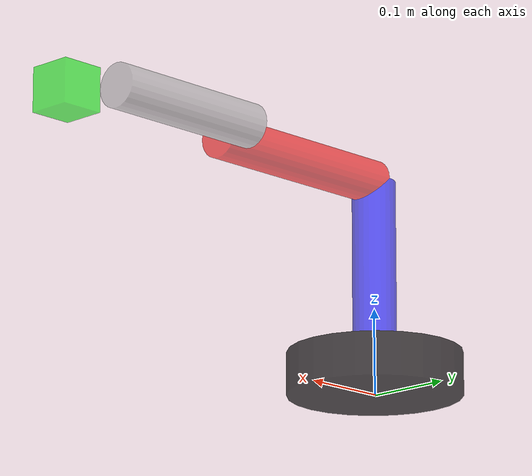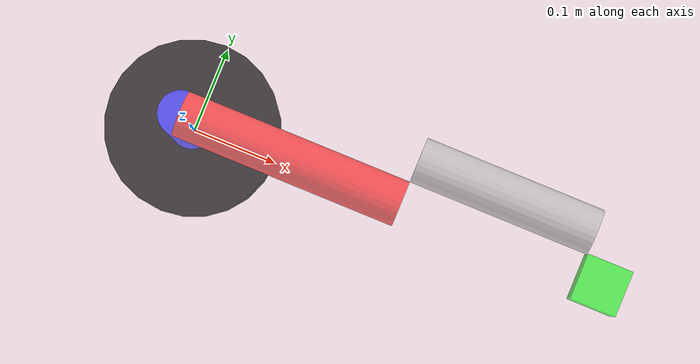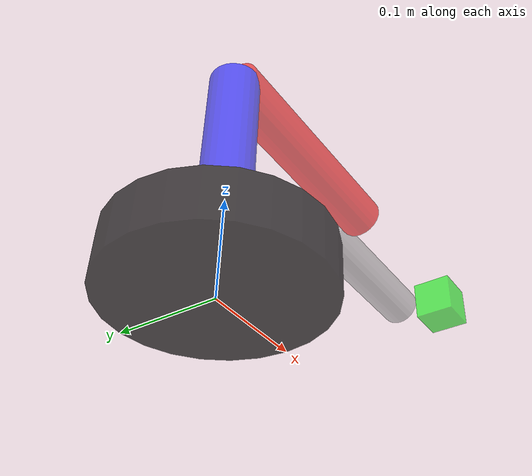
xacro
<?xml version="1.0"?>
<robot name="arm_4dof" xmlns:xacro="http://www.ros.org/wiki/xacro">

	<!-- Parametros DH -->
	<!--Joint   a       d      alpha   theta -->
	<!--J1      0       0.05   0       theta1 -->
	<!--J2      0.05    0.20   pi/2    theta2 -->
	<!--J3      0.25   -0.05   0       theta3 -->
	<!--J4      0.20    0.05   0       theta4 -->
	<!--Tip     0.05    0     -pi/2    0 -->

       <!-- referencia world -->

	<link name="world"/>

	<joint name="j0" type="fixed">
		<parent link="world"/>
		<child link="base_link"/>
	</joint>

	<link name="base_link">

		<visual>
			<geometry>
				<cylinder length="0.05" radius="0.1"/>
			</geometry>
			<material name="black">
				<color rgba="0.0 0.0 0.0 0.7"/>
			</material>
			<origin rpy="0 0 0" xyz="0 0 0.025"/>
		</visual>

		<collision>
			<geometry>
				<cylinder length="0.05" radius="0.1"/>
			</geometry>
			<origin rpy="0 0 0" xyz="0 0 0.025"/>
		</collision>

		<inertial>
			<mass value="1.0"/>
			<origin rpy="0 0 0" xyz="0 0 0.025"/>
			<inertia ixx="0.0027" iyy="0.0027" izz="0.005" ixy="0" ixz="0" iyz="0"/>
		</inertial>
	</link>

	<!--J1      0       0.05   0       theta1 -->
	<joint name="j1" type="revolute">
		<axis xyz="0 0 1"/>
		<parent link="base_link"/>
		<child link="torso"/>
		<origin rpy="0 0 0" xyz="0 0 0.05"/>
		<limit velocity="1.0" effort="2.0" upper="1.5708" lower="-1.5708"/>
	</joint>

	<link name="torso">

		<visual>
			<geometry>
				<cylinder length="0.2" radius="0.025"/>
			</geometry>
			<material name="blue">
				<color rgba="0.0 0.0 1.0 0.6"/>
			</material>
			<origin rpy="0 0 0" xyz="0.0 0.0 0.1"/>
		</visual>
		<collision>
			<geometry>
				<cylinder length="0.2" radius="0.025"/>
			</geometry>
			<origin rpy="0 0 0" xyz="0.0 0.0 0.1"/>
		</collision>

		<inertial>
			<mass value="1.0"/>
			<origin rpy="0 0 0" xyz="0 0 0.1"/>
			<inertia ixx="0.02146" iyy="0.02146" izz="0.00125" ixy="0" ixz="0" iyz="0"/>
		</inertial>
	</link>

       <!--J2      0    0.20   pi/2    theta2 -->
	<joint name="j2" type="revolute">
		<axis xyz="0 0 1"/>
		<parent link="torso"/>
		<child link="upper_arm"/>
		<origin rpy="1.5708 0 0" xyz="0.0 0 0.20"/>
		<limit velocity="1.0" effort="2.0" upper="1.5708" lower="-0.7853"/>
	</joint>

	<link name="upper_arm">

		<visual>
			<geometry>
				<cylinder length="0.25" radius="0.025"/>
			</geometry>
			<material name="red">
				<color rgba="1.0 0.0 0.0 0.6"/>
			</material>
			<origin rpy="0 1.5708 0" xyz="0.125 0 0.0"/>
		</visual>
		<collision>
			<geometry>
				<cylinder length="0.25" radius="0.025"/>
			</geometry>
			<origin rpy="0 1.5708 0" xyz="0.125 0 0.0"/>
		</collision>

		<inertial>
			<mass value="1.0"/>
			<origin rpy="0 1.5708 0" xyz="0.125 0 0.0"/>
			<inertia ixx="0.01396" iyy="0.01396" izz="0.00125" ixy="0" ixz="0" iyz="0"/>
		</inertial>
	</link>

	<!--J3      0.25   -0.05   0       theta3 -->
	<joint name="j3" type="revolute">
		<axis xyz="0 0 1"/>

		<parent link="upper_arm"/>
		<child link="lower_arm"/>
		<origin rpy="0 0 0" xyz="0.25 0.0 -0.05"/>
		<limit velocity="1.0" effort="30.0" upper="0.7853" lower="-0.7853"/>
	</joint>

	<link name="lower_arm">
		<inertial>
			<mass value="1.0"/>
			<origin rpy="0 1.5708 0" xyz="0.1 0 0"/>
			<inertia ixx="0.01396" iyy="0.01396" izz="0.00125" ixy="0" ixz="0" iyz="0"/>
		</inertial>
		<visual>
			<geometry>
				<cylinder length="0.2" radius="0.025"/>
			</geometry>
			<material name="blue">
				<color rgba="0.7 0.7 0.7 0.6"/>
			</material>
			<origin rpy="0 1.5708 0" xyz="0.1 0 0"/>
		</visual>
		<collision>
			<geometry>
				<cylinder length="0.2" radius="0.025"/>
			</geometry>
			<origin rpy="0 1.5708 0" xyz="0.1 0 0"/>
		</collision>
	</link>

       <!--J4      0.20    0.05   0       theta4 -->
	<joint name="j4" type="revolute">
		<axis xyz="0 0 1"/>
		<parent link="lower_arm"/>
		<child link="hand"/>
		<origin rpy="0 0 0" xyz="0.2 0.0 0.05"/>
		<limit velocity="1.0" effort="30.0" upper="0.7853" lower="-0.7853"/>
	</joint>

	<link name="hand">
		<inertial>
			<mass value="1.0"/>
			<inertia ixx="0.00042" iyy="0.00042" izz="0.00042" ixy="0" ixz="0" iyz="0"/>
		</inertial>
		<visual>
			<geometry>
				<box size="0.05 0.05 0.05"/>
			</geometry>
			<material name="green">
				<color rgba="0.0 1.0 0.0 0.6"/>
			</material>
			<origin rpy="1.5708 0 0" xyz="0.025 0 0"/>
		</visual>
		<collision>
			<geometry>
				<box size="0.05 0.05 0.05"/>
			</geometry>
		</collision>
	</link>

	<!--Tip     0.05    0     -pi/2    0 -->
	<joint name="tip" type="fixed">
		<origin rpy="-1.5708 0 0" xyz="0.05 0.0 0.0"/>
		<parent link="hand"/>
		<child link="end"/>
	</joint>

	<link name="end"/>

</robot>
